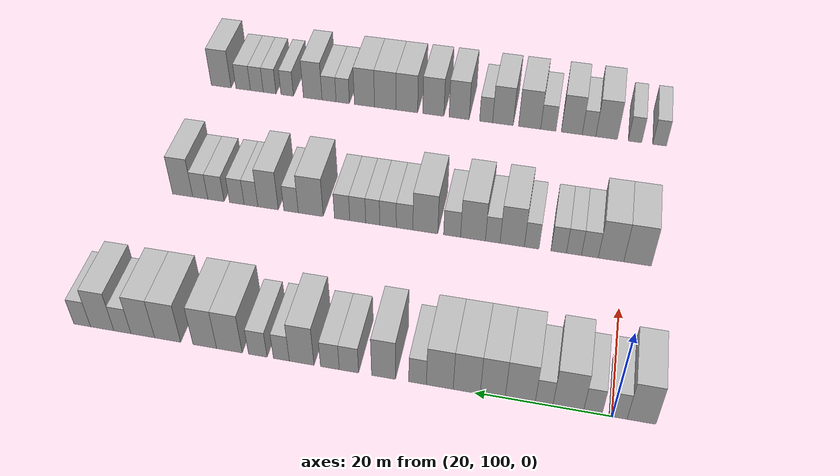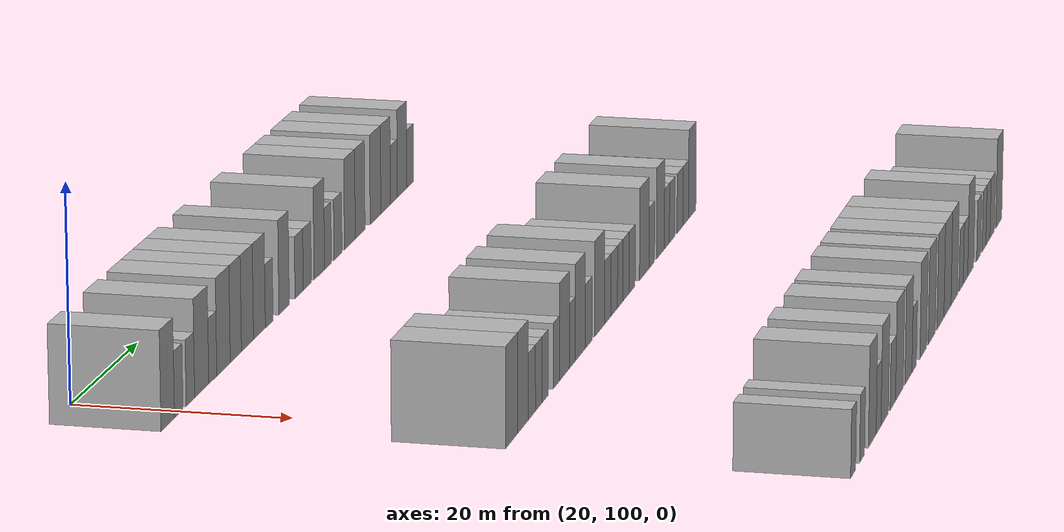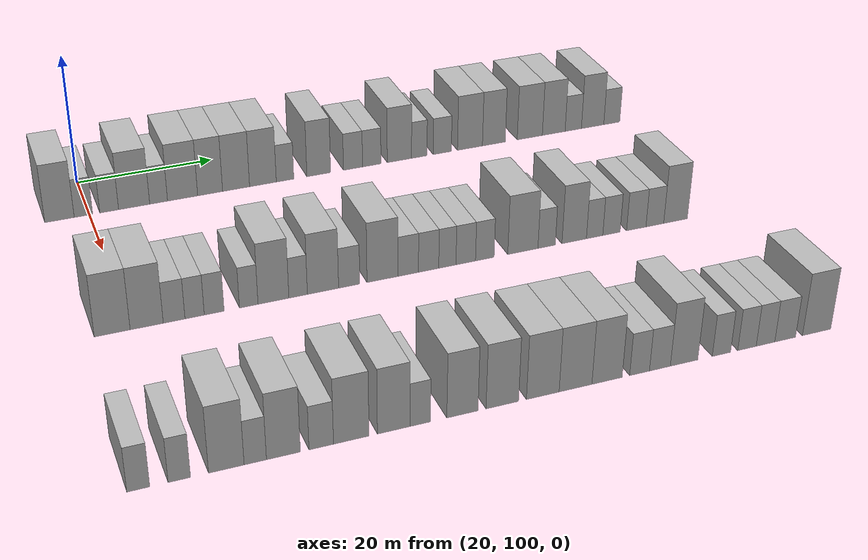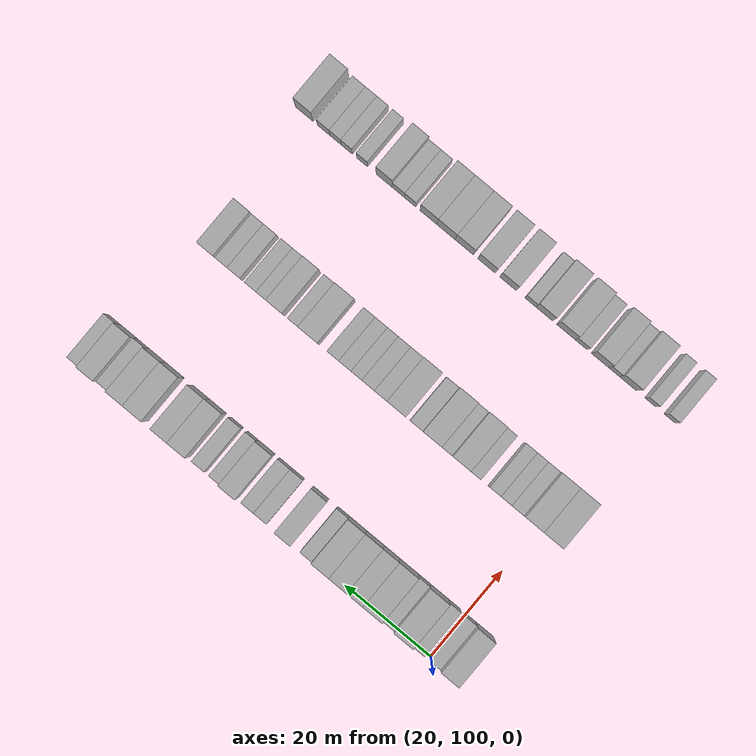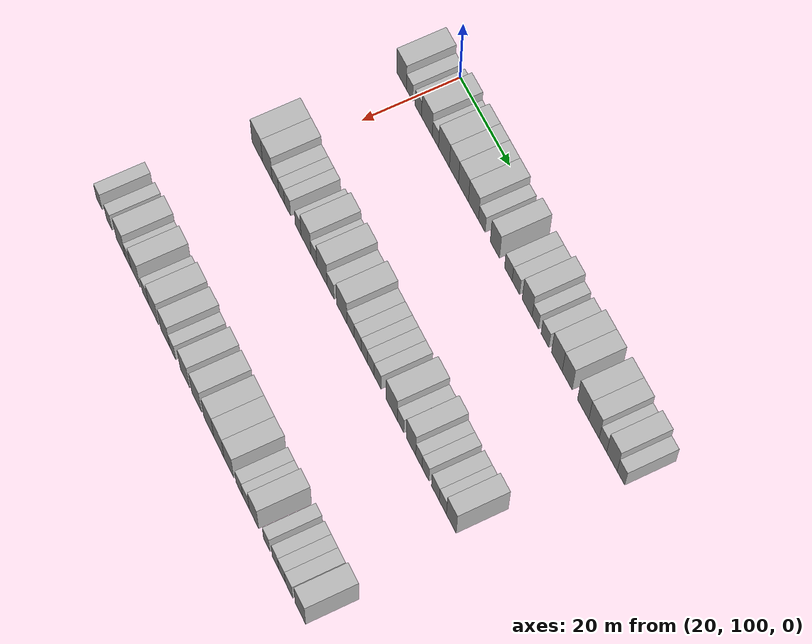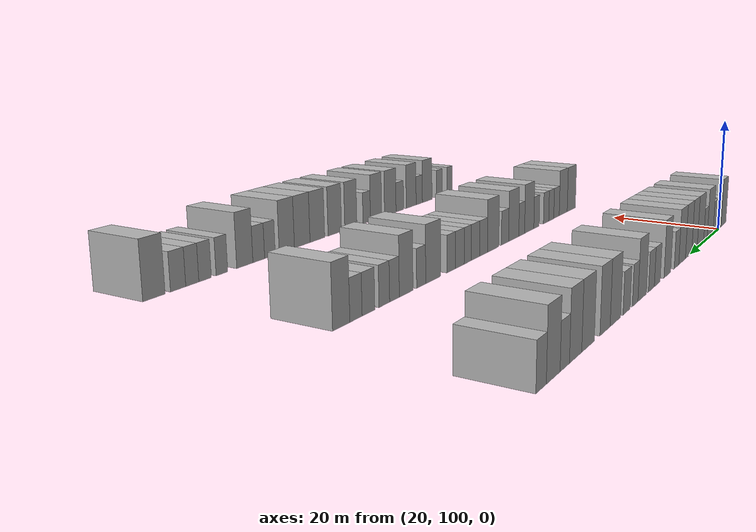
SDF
<sdf version="1.6">
 <world name="default">
  <model name="building_92">
   <static>1</static>
   <pose>25.0000 95.8423 0 0.000000 0.000000 0.000000</pose>
   <link name="link">
    <pose>0 0 4.50 0 0 0</pose>
    <collision name="collision"><geometry><box><size>10.0000 4.0931 9.0000</size></box></geometry></collision>
    <visual name="visual">
     <cast_shadows>0</cast_shadows>
     <geometry><box><size>10.0000 4.0931 9.0000</size></box></geometry>
     <material>
      <script>
       <uri>model://HANNAS_wall/materials/scripts</uri>
       <uri>model://HANNAS_wall/materials/textures</uri>
       <name>vrc/HANNAS_wall</name>
      </script>
     </material>
    </visual>
   </link>
  </model>
  <model name="building_93">
   <static>1</static>
   <pose>25.0000 99.1836 0 0.000000 0.000000 0.000000</pose>
   <link name="link">
    <pose>0 0 3.00 0 0 0</pose>
    <collision name="collision"><geometry><box><size>10.0000 2.5895 6.0000</size></box></geometry></collision>
    <visual name="visual">
     <cast_shadows>0</cast_shadows>
     <geometry><box><size>10.0000 2.5895 6.0000</size></box></geometry>
     <material>
      <script>
       <uri>model://HANNAS_wall/materials/scripts</uri>
       <uri>model://HANNAS_wall/materials/textures</uri>
       <name>vrc/HANNAS_wall</name>
      </script>
     </material>
    </visual>
   </link>
  </model>
  <model name="building_94">
   <static>1</static>
   <pose>25.0000 102.8076 0 0.000000 0.000000 0.000000</pose>
   <link name="link">
    <pose>0 0 3.00 0 0 0</pose>
    <collision name="collision"><geometry><box><size>10.0000 2.6584 6.0000</size></box></geometry></collision>
    <visual name="visual">
     <cast_shadows>0</cast_shadows>
     <geometry><box><size>10.0000 2.6584 6.0000</size></box></geometry>
     <material>
      <script>
       <uri>model://HANNAS_wall/materials/scripts</uri>
       <uri>model://HANNAS_wall/materials/textures</uri>
       <name>vrc/HANNAS_wall</name>
      </script>
     </material>
    </visual>
   </link>
  </model>
  <model name="building_95">
   <static>1</static>
   <pose>25.0000 106.3598 0 0.000000 0.000000 0.000000</pose>
   <link name="link">
    <pose>0 0 4.50 0 0 0</pose>
    <collision name="collision"><geometry><box><size>10.0000 4.4459 9.0000</size></box></geometry></collision>
    <visual name="visual">
     <cast_shadows>0</cast_shadows>
     <geometry><box><size>10.0000 4.4459 9.0000</size></box></geometry>
     <material>
      <script>
       <uri>model://HANNAS_wall/materials/scripts</uri>
       <uri>model://HANNAS_wall/materials/textures</uri>
       <name>vrc/HANNAS_wall</name>
      </script>
     </material>
    </visual>
   </link>
  </model>
  <model name="building_96">
   <static>1</static>
   <pose>25.0000 109.8705 0 0.000000 0.000000 0.000000</pose>
   <link name="link">
    <pose>0 0 3.00 0 0 0</pose>
    <collision name="collision"><geometry><box><size>10.0000 2.5754 6.0000</size></box></geometry></collision>
    <visual name="visual">
     <cast_shadows>0</cast_shadows>
     <geometry><box><size>10.0000 2.5754 6.0000</size></box></geometry>
     <material>
      <script>
       <uri>model://HANNAS_wall/materials/scripts</uri>
       <uri>model://HANNAS_wall/materials/textures</uri>
       <name>vrc/HANNAS_wall</name>
      </script>
     </material>
    </visual>
   </link>
  </model>
  <model name="building_97">
   <static>1</static>
   <pose>25.0000 113.3537 0 0.000000 0.000000 0.000000</pose>
   <link name="link">
    <pose>0 0 4.50 0 0 0</pose>
    <collision name="collision"><geometry><box><size>10.0000 4.3910 9.0000</size></box></geometry></collision>
    <visual name="visual">
     <cast_shadows>0</cast_shadows>
     <geometry><box><size>10.0000 4.3910 9.0000</size></box></geometry>
     <material>
      <script>
       <uri>model://HANNAS_wall/materials/scripts</uri>
       <uri>model://HANNAS_wall/materials/textures</uri>
       <name>vrc/HANNAS_wall</name>
      </script>
     </material>
    </visual>
   </link>
  </model>
  <model name="building_98">
   <static>1</static>
   <pose>25.0000 117.3864 0 0.000000 0.000000 0.000000</pose>
   <link name="link">
    <pose>0 0 4.50 0 0 0</pose>
    <collision name="collision"><geometry><box><size>10.0000 3.6744 9.0000</size></box></geometry></collision>
    <visual name="visual">
     <cast_shadows>0</cast_shadows>
     <geometry><box><size>10.0000 3.6744 9.0000</size></box></geometry>
     <material>
      <script>
       <uri>model://HANNAS_wall/materials/scripts</uri>
       <uri>model://HANNAS_wall/materials/textures</uri>
       <name>vrc/HANNAS_wall</name>
      </script>
     </material>
    </visual>
   </link>
  </model>
  <model name="building_99">
   <static>1</static>
   <pose>25.0000 121.2319 0 0.000000 0.000000 0.000000</pose>
   <link name="link">
    <pose>0 0 4.50 0 0 0</pose>
    <collision name="collision"><geometry><box><size>10.0000 4.0166 9.0000</size></box></geometry></collision>
    <visual name="visual">
     <cast_shadows>0</cast_shadows>
     <geometry><box><size>10.0000 4.0166 9.0000</size></box></geometry>
     <material>
      <script>
       <uri>model://HANNAS_wall/materials/scripts</uri>
       <uri>model://HANNAS_wall/materials/textures</uri>
       <name>vrc/HANNAS_wall</name>
      </script>
     </material>
    </visual>
   </link>
  </model>
  <model name="building_100">
   <static>1</static>
   <pose>25.0000 125.2518 0 0.000000 0.000000 0.000000</pose>
   <link name="link">
    <pose>0 0 4.50 0 0 0</pose>
    <collision name="collision"><geometry><box><size>10.0000 4.0231 9.0000</size></box></geometry></collision>
    <visual name="visual">
     <cast_shadows>0</cast_shadows>
     <geometry><box><size>10.0000 4.0231 9.0000</size></box></geometry>
     <material>
      <script>
       <uri>model://HANNAS_wall/materials/scripts</uri>
       <uri>model://HANNAS_wall/materials/textures</uri>
       <name>vrc/HANNAS_wall</name>
      </script>
     </material>
    </visual>
   </link>
  </model>
  <model name="building_101">
   <static>1</static>
   <pose>25.0000 128.5922 0 0.000000 0.000000 0.000000</pose>
   <link name="link">
    <pose>0 0 3.00 0 0 0</pose>
    <collision name="collision"><geometry><box><size>10.0000 2.6576 6.0000</size></box></geometry></collision>
    <visual name="visual">
     <cast_shadows>0</cast_shadows>
     <geometry><box><size>10.0000 2.6576 6.0000</size></box></geometry>
     <material>
      <script>
       <uri>model://HANNAS_wall/materials/scripts</uri>
       <uri>model://HANNAS_wall/materials/textures</uri>
       <name>vrc/HANNAS_wall</name>
      </script>
     </material>
    </visual>
   </link>
  </model>
  <model name="building_102">
   <static>1</static>
   <pose>25.0000 133.7462 0 0.000000 0.000000 0.000000</pose>
   <link name="link">
    <pose>0 0 4.50 0 0 0</pose>
    <collision name="collision"><geometry><box><size>10.0000 3.6505 9.0000</size></box></geometry></collision>
    <visual name="visual">
     <cast_shadows>0</cast_shadows>
     <geometry><box><size>10.0000 3.6505 9.0000</size></box></geometry>
     <material>
      <script>
       <uri>model://HANNAS_wall/materials/scripts</uri>
       <uri>model://HANNAS_wall/materials/textures</uri>
       <name>vrc/HANNAS_wall</name>
      </script>
     </material>
    </visual>
   </link>
  </model>
  <model name="building_103">
   <static>1</static>
   <pose>25.0000 139.0585 0 0.000000 0.000000 0.000000</pose>
   <link name="link">
    <pose>0 0 3.00 0 0 0</pose>
    <collision name="collision"><geometry><box><size>10.0000 2.9740 6.0000</size></box></geometry></collision>
    <visual name="visual">
     <cast_shadows>0</cast_shadows>
     <geometry><box><size>10.0000 2.9740 6.0000</size></box></geometry>
     <material>
      <script>
       <uri>model://HANNAS_wall/materials/scripts</uri>
       <uri>model://HANNAS_wall/materials/textures</uri>
       <name>vrc/HANNAS_wall</name>
      </script>
     </material>
    </visual>
   </link>
  </model>
  <model name="building_104">
   <static>1</static>
   <pose>25.0000 141.9959 0 0.000000 0.000000 0.000000</pose>
   <link name="link">
    <pose>0 0 3.00 0 0 0</pose>
    <collision name="collision"><geometry><box><size>10.0000 2.9008 6.0000</size></box></geometry></collision>
    <visual name="visual">
     <cast_shadows>0</cast_shadows>
     <geometry><box><size>10.0000 2.9008 6.0000</size></box></geometry>
     <material>
      <script>
       <uri>model://HANNAS_wall/materials/scripts</uri>
       <uri>model://HANNAS_wall/materials/textures</uri>
       <name>vrc/HANNAS_wall</name>
      </script>
     </material>
    </visual>
   </link>
  </model>
  <model name="building_105">
   <static>1</static>
   <pose>25.0000 146.3792 0 0.000000 0.000000 0.000000</pose>
   <link name="link">
    <pose>0 0 4.50 0 0 0</pose>
    <collision name="collision"><geometry><box><size>10.0000 3.8657 9.0000</size></box></geometry></collision>
    <visual name="visual">
     <cast_shadows>0</cast_shadows>
     <geometry><box><size>10.0000 3.8657 9.0000</size></box></geometry>
     <material>
      <script>
       <uri>model://HANNAS_wall/materials/scripts</uri>
       <uri>model://HANNAS_wall/materials/textures</uri>
       <name>vrc/HANNAS_wall</name>
      </script>
     </material>
    </visual>
   </link>
  </model>
  <model name="building_106">
   <static>1</static>
   <pose>25.0000 149.5567 0 0.000000 0.000000 0.000000</pose>
   <link name="link">
    <pose>0 0 3.00 0 0 0</pose>
    <collision name="collision"><geometry><box><size>10.0000 2.4893 6.0000</size></box></geometry></collision>
    <visual name="visual">
     <cast_shadows>0</cast_shadows>
     <geometry><box><size>10.0000 2.4893 6.0000</size></box></geometry>
     <material>
      <script>
       <uri>model://HANNAS_wall/materials/scripts</uri>
       <uri>model://HANNAS_wall/materials/textures</uri>
       <name>vrc/HANNAS_wall</name>
      </script>
     </material>
    </visual>
   </link>
  </model>
  <model name="building_107">
   <static>1</static>
   <pose>25.0000 153.2718 0 0.000000 0.000000 0.000000</pose>
   <link name="link">
    <pose>0 0 3.00 0 0 0</pose>
    <collision name="collision"><geometry><box><size>10.0000 2.9410 6.0000</size></box></geometry></collision>
    <visual name="visual">
     <cast_shadows>0</cast_shadows>
     <geometry><box><size>10.0000 2.9410 6.0000</size></box></geometry>
     <material>
      <script>
       <uri>model://HANNAS_wall/materials/scripts</uri>
       <uri>model://HANNAS_wall/materials/textures</uri>
       <name>vrc/HANNAS_wall</name>
      </script>
     </material>
    </visual>
   </link>
  </model>
  <model name="building_108">
   <static>1</static>
   <pose>25.0000 157.7884 0 0.000000 0.000000 0.000000</pose>
   <link name="link">
    <pose>0 0 4.50 0 0 0</pose>
    <collision name="collision"><geometry><box><size>10.0000 4.0922 9.0000</size></box></geometry></collision>
    <visual name="visual">
     <cast_shadows>0</cast_shadows>
     <geometry><box><size>10.0000 4.0922 9.0000</size></box></geometry>
     <material>
      <script>
       <uri>model://HANNAS_wall/materials/scripts</uri>
       <uri>model://HANNAS_wall/materials/textures</uri>
       <name>vrc/HANNAS_wall</name>
      </script>
     </material>
    </visual>
   </link>
  </model>
  <model name="building_109">
   <static>1</static>
   <pose>25.0000 161.7265 0 0.000000 0.000000 0.000000</pose>
   <link name="link">
    <pose>0 0 4.50 0 0 0</pose>
    <collision name="collision"><geometry><box><size>10.0000 3.7840 9.0000</size></box></geometry></collision>
    <visual name="visual">
     <cast_shadows>0</cast_shadows>
     <geometry><box><size>10.0000 3.7840 9.0000</size></box></geometry>
     <material>
      <script>
       <uri>model://HANNAS_wall/materials/scripts</uri>
       <uri>model://HANNAS_wall/materials/textures</uri>
       <name>vrc/HANNAS_wall</name>
      </script>
     </material>
    </visual>
   </link>
  </model>
  <model name="building_110">
   <static>1</static>
   <pose>25.0000 167.7330 0 0.000000 0.000000 0.000000</pose>
   <link name="link">
    <pose>0 0 4.50 0 0 0</pose>
    <collision name="collision"><geometry><box><size>10.0000 4.2289 9.0000</size></box></geometry></collision>
    <visual name="visual">
     <cast_shadows>0</cast_shadows>
     <geometry><box><size>10.0000 4.2289 9.0000</size></box></geometry>
     <material>
      <script>
       <uri>model://HANNAS_wall/materials/scripts</uri>
       <uri>model://HANNAS_wall/materials/textures</uri>
       <name>vrc/HANNAS_wall</name>
      </script>
     </material>
    </visual>
   </link>
  </model>
  <model name="building_111">
   <static>1</static>
   <pose>25.0000 171.7868 0 0.000000 0.000000 0.000000</pose>
   <link name="link">
    <pose>0 0 4.50 0 0 0</pose>
    <collision name="collision"><geometry><box><size>10.0000 3.8789 9.0000</size></box></geometry></collision>
    <visual name="visual">
     <cast_shadows>0</cast_shadows>
     <geometry><box><size>10.0000 3.8789 9.0000</size></box></geometry>
     <material>
      <script>
       <uri>model://HANNAS_wall/materials/scripts</uri>
       <uri>model://HANNAS_wall/materials/textures</uri>
       <name>vrc/HANNAS_wall</name>
      </script>
     </material>
    </visual>
   </link>
  </model>
  <model name="building_112">
   <static>1</static>
   <pose>25.0000 175.1234 0 0.000000 0.000000 0.000000</pose>
   <link name="link">
    <pose>0 0 3.00 0 0 0</pose>
    <collision name="collision"><geometry><box><size>10.0000 2.7942 6.0000</size></box></geometry></collision>
    <visual name="visual">
     <cast_shadows>0</cast_shadows>
     <geometry><box><size>10.0000 2.7942 6.0000</size></box></geometry>
     <material>
      <script>
       <uri>model://HANNAS_wall/materials/scripts</uri>
       <uri>model://HANNAS_wall/materials/textures</uri>
       <name>vrc/HANNAS_wall</name>
      </script>
     </material>
    </visual>
   </link>
  </model>
  <model name="building_113">
   <static>1</static>
   <pose>25.0000 178.4568 0 0.000000 0.000000 0.000000</pose>
   <link name="link">
    <pose>0 0 4.50 0 0 0</pose>
    <collision name="collision"><geometry><box><size>10.0000 3.8726 9.0000</size></box></geometry></collision>
    <visual name="visual">
     <cast_shadows>0</cast_shadows>
     <geometry><box><size>10.0000 3.8726 9.0000</size></box></geometry>
     <material>
      <script>
       <uri>model://HANNAS_wall/materials/scripts</uri>
       <uri>model://HANNAS_wall/materials/textures</uri>
       <name>vrc/HANNAS_wall</name>
      </script>
     </material>
    </visual>
   </link>
  </model>
  <model name="building_114">
   <static>1</static>
   <pose>25.0000 181.7851 0 0.000000 0.000000 0.000000</pose>
   <link name="link">
    <pose>0 0 3.00 0 0 0</pose>
    <collision name="collision"><geometry><box><size>10.0000 2.7840 6.0000</size></box></geometry></collision>
    <visual name="visual">
     <cast_shadows>0</cast_shadows>
     <geometry><box><size>10.0000 2.7840 6.0000</size></box></geometry>
     <material>
      <script>
       <uri>model://HANNAS_wall/materials/scripts</uri>
       <uri>model://HANNAS_wall/materials/textures</uri>
       <name>vrc/HANNAS_wall</name>
      </script>
     </material>
    </visual>
   </link>
  </model>
  <model name="building_233">
   <static>1</static>
   <pose>55.0000 97.4801 0 0.000000 0.000000 0.000000</pose>
   <link name="link">
    <pose>0 0 4.50 0 0 0</pose>
    <collision name="collision"><geometry><box><size>10.0000 4.4728 9.0000</size></box></geometry></collision>
    <visual name="visual">
     <cast_shadows>0</cast_shadows>
     <geometry><box><size>10.0000 4.4728 9.0000</size></box></geometry>
     <material>
      <script>
       <uri>model://HANNAS_wall/materials/scripts</uri>
       <uri>model://HANNAS_wall/materials/textures</uri>
       <name>vrc/HANNAS_wall</name>
      </script>
     </material>
    </visual>
   </link>
  </model>
  <model name="building_234">
   <static>1</static>
   <pose>55.0000 101.8052 0 0.000000 0.000000 0.000000</pose>
   <link name="link">
    <pose>0 0 4.50 0 0 0</pose>
    <collision name="collision"><geometry><box><size>10.0000 4.1774 9.0000</size></box></geometry></collision>
    <visual name="visual">
     <cast_shadows>0</cast_shadows>
     <geometry><box><size>10.0000 4.1774 9.0000</size></box></geometry>
     <material>
      <script>
       <uri>model://HANNAS_wall/materials/scripts</uri>
       <uri>model://HANNAS_wall/materials/textures</uri>
       <name>vrc/HANNAS_wall</name>
      </script>
     </material>
    </visual>
   </link>
  </model>
  <model name="building_235">
   <static>1</static>
   <pose>55.0000 105.2798 0 0.000000 0.000000 0.000000</pose>
   <link name="link">
    <pose>0 0 3.00 0 0 0</pose>
    <collision name="collision"><geometry><box><size>10.0000 2.7718 6.0000</size></box></geometry></collision>
    <visual name="visual">
     <cast_shadows>0</cast_shadows>
     <geometry><box><size>10.0000 2.7718 6.0000</size></box></geometry>
     <material>
      <script>
       <uri>model://HANNAS_wall/materials/scripts</uri>
       <uri>model://HANNAS_wall/materials/textures</uri>
       <name>vrc/HANNAS_wall</name>
      </script>
     </material>
    </visual>
   </link>
  </model>
  <model name="building_236">
   <static>1</static>
   <pose>55.0000 107.9070 0 0.000000 0.000000 0.000000</pose>
   <link name="link">
    <pose>0 0 3.00 0 0 0</pose>
    <collision name="collision"><geometry><box><size>10.0000 2.4826 6.0000</size></box></geometry></collision>
    <visual name="visual">
     <cast_shadows>0</cast_shadows>
     <geometry><box><size>10.0000 2.4826 6.0000</size></box></geometry>
     <material>
      <script>
       <uri>model://HANNAS_wall/materials/scripts</uri>
       <uri>model://HANNAS_wall/materials/textures</uri>
       <name>vrc/HANNAS_wall</name>
      </script>
     </material>
    </visual>
   </link>
  </model>
  <model name="building_237">
   <static>1</static>
   <pose>55.0000 110.4336 0 0.000000 0.000000 0.000000</pose>
   <link name="link">
    <pose>0 0 3.00 0 0 0</pose>
    <collision name="collision"><geometry><box><size>10.0000 2.5706 6.0000</size></box></geometry></collision>
    <visual name="visual">
     <cast_shadows>0</cast_shadows>
     <geometry><box><size>10.0000 2.5706 6.0000</size></box></geometry>
     <material>
      <script>
       <uri>model://HANNAS_wall/materials/scripts</uri>
       <uri>model://HANNAS_wall/materials/textures</uri>
       <name>vrc/HANNAS_wall</name>
      </script>
     </material>
    </visual>
   </link>
  </model>
  <model name="building_238">
   <static>1</static>
   <pose>55.0000 114.9391 0 0.000000 0.000000 0.000000</pose>
   <link name="link">
    <pose>0 0 3.00 0 0 0</pose>
    <collision name="collision"><geometry><box><size>10.0000 2.4404 6.0000</size></box></geometry></collision>
    <visual name="visual">
     <cast_shadows>0</cast_shadows>
     <geometry><box><size>10.0000 2.4404 6.0000</size></box></geometry>
     <material>
      <script>
       <uri>model://HANNAS_wall/materials/scripts</uri>
       <uri>model://HANNAS_wall/materials/textures</uri>
       <name>vrc/HANNAS_wall</name>
      </script>
     </material>
    </visual>
   </link>
  </model>
  <model name="building_239">
   <static>1</static>
   <pose>55.0000 118.2102 0 0.000000 0.000000 0.000000</pose>
   <link name="link">
    <pose>0 0 4.50 0 0 0</pose>
    <collision name="collision"><geometry><box><size>10.0000 4.1018 9.0000</size></box></geometry></collision>
    <visual name="visual">
     <cast_shadows>0</cast_shadows>
     <geometry><box><size>10.0000 4.1018 9.0000</size></box></geometry>
     <material>
      <script>
       <uri>model://HANNAS_wall/materials/scripts</uri>
       <uri>model://HANNAS_wall/materials/textures</uri>
       <name>vrc/HANNAS_wall</name>
      </script>
     </material>
    </visual>
   </link>
  </model>
  <model name="building_240">
   <static>1</static>
   <pose>55.0000 121.4996 0 0.000000 0.000000 0.000000</pose>
   <link name="link">
    <pose>0 0 3.00 0 0 0</pose>
    <collision name="collision"><geometry><box><size>10.0000 2.4769 6.0000</size></box></geometry></collision>
    <visual name="visual">
     <cast_shadows>0</cast_shadows>
     <geometry><box><size>10.0000 2.4769 6.0000</size></box></geometry>
     <material>
      <script>
       <uri>model://HANNAS_wall/materials/scripts</uri>
       <uri>model://HANNAS_wall/materials/textures</uri>
       <name>vrc/HANNAS_wall</name>
      </script>
     </material>
    </visual>
   </link>
  </model>
  <model name="building_241">
   <static>1</static>
   <pose>55.0000 124.8544 0 0.000000 0.000000 0.000000</pose>
   <link name="link">
    <pose>0 0 4.50 0 0 0</pose>
    <collision name="collision"><geometry><box><size>10.0000 4.2327 9.0000</size></box></geometry></collision>
    <visual name="visual">
     <cast_shadows>0</cast_shadows>
     <geometry><box><size>10.0000 4.2327 9.0000</size></box></geometry>
     <material>
      <script>
       <uri>model://HANNAS_wall/materials/scripts</uri>
       <uri>model://HANNAS_wall/materials/textures</uri>
       <name>vrc/HANNAS_wall</name>
      </script>
     </material>
    </visual>
   </link>
  </model>
  <model name="building_242">
   <static>1</static>
   <pose>55.0000 128.4194 0 0.000000 0.000000 0.000000</pose>
   <link name="link">
    <pose>0 0 3.00 0 0 0</pose>
    <collision name="collision"><geometry><box><size>10.0000 2.8975 6.0000</size></box></geometry></collision>
    <visual name="visual">
     <cast_shadows>0</cast_shadows>
     <geometry><box><size>10.0000 2.8975 6.0000</size></box></geometry>
     <material>
      <script>
       <uri>model://HANNAS_wall/materials/scripts</uri>
       <uri>model://HANNAS_wall/materials/textures</uri>
       <name>vrc/HANNAS_wall</name>
      </script>
     </material>
    </visual>
   </link>
  </model>
  <model name="building_243">
   <static>1</static>
   <pose>55.0000 133.0146 0 0.000000 0.000000 0.000000</pose>
   <link name="link">
    <pose>0 0 4.50 0 0 0</pose>
    <collision name="collision"><geometry><box><size>10.0000 4.2928 9.0000</size></box></geometry></collision>
    <visual name="visual">
     <cast_shadows>0</cast_shadows>
     <geometry><box><size>10.0000 4.2928 9.0000</size></box></geometry>
     <material>
      <script>
       <uri>model://HANNAS_wall/materials/scripts</uri>
       <uri>model://HANNAS_wall/materials/textures</uri>
       <name>vrc/HANNAS_wall</name>
      </script>
     </material>
    </visual>
   </link>
  </model>
  <model name="building_244">
   <static>1</static>
   <pose>55.0000 136.6033 0 0.000000 0.000000 0.000000</pose>
   <link name="link">
    <pose>0 0 3.00 0 0 0</pose>
    <collision name="collision"><geometry><box><size>10.0000 2.8846 6.0000</size></box></geometry></collision>
    <visual name="visual">
     <cast_shadows>0</cast_shadows>
     <geometry><box><size>10.0000 2.8846 6.0000</size></box></geometry>
     <material>
      <script>
       <uri>model://HANNAS_wall/materials/scripts</uri>
       <uri>model://HANNAS_wall/materials/textures</uri>
       <name>vrc/HANNAS_wall</name>
      </script>
     </material>
    </visual>
   </link>
  </model>
  <model name="building_245">
   <static>1</static>
   <pose>55.0000 139.4843 0 0.000000 0.000000 0.000000</pose>
   <link name="link">
    <pose>0 0 3.00 0 0 0</pose>
    <collision name="collision"><geometry><box><size>10.0000 2.8774 6.0000</size></box></geometry></collision>
    <visual name="visual">
     <cast_shadows>0</cast_shadows>
     <geometry><box><size>10.0000 2.8774 6.0000</size></box></geometry>
     <material>
      <script>
       <uri>model://HANNAS_wall/materials/scripts</uri>
       <uri>model://HANNAS_wall/materials/textures</uri>
       <name>vrc/HANNAS_wall</name>
      </script>
     </material>
    </visual>
   </link>
  </model>
  <model name="building_246">
   <static>1</static>
   <pose>55.0000 142.1514 0 0.000000 0.000000 0.000000</pose>
   <link name="link">
    <pose>0 0 3.00 0 0 0</pose>
    <collision name="collision"><geometry><box><size>10.0000 2.4569 6.0000</size></box></geometry></collision>
    <visual name="visual">
     <cast_shadows>0</cast_shadows>
     <geometry><box><size>10.0000 2.4569 6.0000</size></box></geometry>
     <material>
      <script>
       <uri>model://HANNAS_wall/materials/scripts</uri>
       <uri>model://HANNAS_wall/materials/textures</uri>
       <name>vrc/HANNAS_wall</name>
      </script>
     </material>
    </visual>
   </link>
  </model>
  <model name="building_247">
   <static>1</static>
   <pose>55.0000 144.7847 0 0.000000 0.000000 0.000000</pose>
   <link name="link">
    <pose>0 0 3.00 0 0 0</pose>
    <collision name="collision"><geometry><box><size>10.0000 2.8097 6.0000</size></box></geometry></collision>
    <visual name="visual">
     <cast_shadows>0</cast_shadows>
     <geometry><box><size>10.0000 2.8097 6.0000</size></box></geometry>
     <material>
      <script>
       <uri>model://HANNAS_wall/materials/scripts</uri>
       <uri>model://HANNAS_wall/materials/textures</uri>
       <name>vrc/HANNAS_wall</name>
      </script>
     </material>
    </visual>
   </link>
  </model>
  <model name="building_248">
   <static>1</static>
   <pose>55.0000 147.5394 0 0.000000 0.000000 0.000000</pose>
   <link name="link">
    <pose>0 0 3.00 0 0 0</pose>
    <collision name="collision"><geometry><box><size>10.0000 2.6997 6.0000</size></box></geometry></collision>
    <visual name="visual">
     <cast_shadows>0</cast_shadows>
     <geometry><box><size>10.0000 2.6997 6.0000</size></box></geometry>
     <material>
      <script>
       <uri>model://HANNAS_wall/materials/scripts</uri>
       <uri>model://HANNAS_wall/materials/textures</uri>
       <name>vrc/HANNAS_wall</name>
      </script>
     </material>
    </visual>
   </link>
  </model>
  <model name="building_249">
   <static>1</static>
   <pose>55.0000 153.1123 0 0.000000 0.000000 0.000000</pose>
   <link name="link">
    <pose>0 0 4.50 0 0 0</pose>
    <collision name="collision"><geometry><box><size>10.0000 4.4461 9.0000</size></box></geometry></collision>
    <visual name="visual">
     <cast_shadows>0</cast_shadows>
     <geometry><box><size>10.0000 4.4461 9.0000</size></box></geometry>
     <material>
      <script>
       <uri>model://HANNAS_wall/materials/scripts</uri>
       <uri>model://HANNAS_wall/materials/textures</uri>
       <name>vrc/HANNAS_wall</name>
      </script>
     </material>
    </visual>
   </link>
  </model>
  <model name="building_250">
   <static>1</static>
   <pose>55.0000 156.6277 0 0.000000 0.000000 0.000000</pose>
   <link name="link">
    <pose>0 0 3.00 0 0 0</pose>
    <collision name="collision"><geometry><box><size>10.0000 2.5848 6.0000</size></box></geometry></collision>
    <visual name="visual">
     <cast_shadows>0</cast_shadows>
     <geometry><box><size>10.0000 2.5848 6.0000</size></box></geometry>
     <material>
      <script>
       <uri>model://HANNAS_wall/materials/scripts</uri>
       <uri>model://HANNAS_wall/materials/textures</uri>
       <name>vrc/HANNAS_wall</name>
      </script>
     </material>
    </visual>
   </link>
  </model>
  <model name="building_251">
   <static>1</static>
   <pose>55.0000 160.7636 0 0.000000 0.000000 0.000000</pose>
   <link name="link">
    <pose>0 0 4.50 0 0 0</pose>
    <collision name="collision"><geometry><box><size>10.0000 3.6870 9.0000</size></box></geometry></collision>
    <visual name="visual">
     <cast_shadows>0</cast_shadows>
     <geometry><box><size>10.0000 3.6870 9.0000</size></box></geometry>
     <material>
      <script>
       <uri>model://HANNAS_wall/materials/scripts</uri>
       <uri>model://HANNAS_wall/materials/textures</uri>
       <name>vrc/HANNAS_wall</name>
      </script>
     </material>
    </visual>
   </link>
  </model>
  <model name="building_252">
   <static>1</static>
   <pose>55.0000 163.8532 0 0.000000 0.000000 0.000000</pose>
   <link name="link">
    <pose>0 0 3.00 0 0 0</pose>
    <collision name="collision"><geometry><box><size>10.0000 2.4921 6.0000</size></box></geometry></collision>
    <visual name="visual">
     <cast_shadows>0</cast_shadows>
     <geometry><box><size>10.0000 2.4921 6.0000</size></box></geometry>
     <material>
      <script>
       <uri>model://HANNAS_wall/materials/scripts</uri>
       <uri>model://HANNAS_wall/materials/textures</uri>
       <name>vrc/HANNAS_wall</name>
      </script>
     </material>
    </visual>
   </link>
  </model>
  <model name="building_253">
   <static>1</static>
   <pose>55.0000 166.4265 0 0.000000 0.000000 0.000000</pose>
   <link name="link">
    <pose>0 0 3.00 0 0 0</pose>
    <collision name="collision"><geometry><box><size>10.0000 2.6545 6.0000</size></box></geometry></collision>
    <visual name="visual">
     <cast_shadows>0</cast_shadows>
     <geometry><box><size>10.0000 2.6545 6.0000</size></box></geometry>
     <material>
      <script>
       <uri>model://HANNAS_wall/materials/scripts</uri>
       <uri>model://HANNAS_wall/materials/textures</uri>
       <name>vrc/HANNAS_wall</name>
      </script>
     </material>
    </visual>
   </link>
  </model>
  <model name="building_254">
   <static>1</static>
   <pose>55.0000 170.2523 0 0.000000 0.000000 0.000000</pose>
   <link name="link">
    <pose>0 0 3.00 0 0 0</pose>
    <collision name="collision"><geometry><box><size>10.0000 2.9971 6.0000</size></box></geometry></collision>
    <visual name="visual">
     <cast_shadows>0</cast_shadows>
     <geometry><box><size>10.0000 2.9971 6.0000</size></box></geometry>
     <material>
      <script>
       <uri>model://HANNAS_wall/materials/scripts</uri>
       <uri>model://HANNAS_wall/materials/textures</uri>
       <name>vrc/HANNAS_wall</name>
      </script>
     </material>
    </visual>
   </link>
  </model>
  <model name="building_255">
   <static>1</static>
   <pose>55.0000 173.1362 0 0.000000 0.000000 0.000000</pose>
   <link name="link">
    <pose>0 0 3.00 0 0 0</pose>
    <collision name="collision"><geometry><box><size>10.0000 2.7706 6.0000</size></box></geometry></collision>
    <visual name="visual">
     <cast_shadows>0</cast_shadows>
     <geometry><box><size>10.0000 2.7706 6.0000</size></box></geometry>
     <material>
      <script>
       <uri>model://HANNAS_wall/materials/scripts</uri>
       <uri>model://HANNAS_wall/materials/textures</uri>
       <name>vrc/HANNAS_wall</name>
      </script>
     </material>
    </visual>
   </link>
  </model>
  <model name="building_256">
   <static>1</static>
   <pose>55.0000 176.3845 0 0.000000 0.000000 0.000000</pose>
   <link name="link">
    <pose>0 0 4.50 0 0 0</pose>
    <collision name="collision"><geometry><box><size>10.0000 3.7260 9.0000</size></box></geometry></collision>
    <visual name="visual">
     <cast_shadows>0</cast_shadows>
     <geometry><box><size>10.0000 3.7260 9.0000</size></box></geometry>
     <material>
      <script>
       <uri>model://HANNAS_wall/materials/scripts</uri>
       <uri>model://HANNAS_wall/materials/textures</uri>
       <name>vrc/HANNAS_wall</name>
      </script>
     </material>
    </visual>
   </link>
  </model>
  <model name="building_369">
   <static>1</static>
   <pose>85.0000 94.5284 0 0.000000 0.000000 0.000000</pose>
   <link name="link">
    <pose>0 0 3.00 0 0 0</pose>
    <collision name="collision"><geometry><box><size>10.0000 2.4958 6.0000</size></box></geometry></collision>
    <visual name="visual">
     <cast_shadows>0</cast_shadows>
     <geometry><box><size>10.0000 2.4958 6.0000</size></box></geometry>
     <material>
      <script>
       <uri>model://HANNAS_wall/materials/scripts</uri>
       <uri>model://HANNAS_wall/materials/textures</uri>
       <name>vrc/HANNAS_wall</name>
      </script>
     </material>
    </visual>
   </link>
  </model>
  <model name="building_370">
   <static>1</static>
   <pose>85.0000 99.0122 0 0.000000 0.000000 0.000000</pose>
   <link name="link">
    <pose>0 0 3.00 0 0 0</pose>
    <collision name="collision"><geometry><box><size>10.0000 2.4717 6.0000</size></box></geometry></collision>
    <visual name="visual">
     <cast_shadows>0</cast_shadows>
     <geometry><box><size>10.0000 2.4717 6.0000</size></box></geometry>
     <material>
      <script>
       <uri>model://HANNAS_wall/materials/scripts</uri>
       <uri>model://HANNAS_wall/materials/textures</uri>
       <name>vrc/HANNAS_wall</name>
      </script>
     </material>
    </visual>
   </link>
  </model>
  <model name="building_371">
   <static>1</static>
   <pose>85.0000 104.2459 0 0.000000 0.000000 0.000000</pose>
   <link name="link">
    <pose>0 0 4.50 0 0 0</pose>
    <collision name="collision"><geometry><box><size>10.0000 3.9957 9.0000</size></box></geometry></collision>
    <visual name="visual">
     <cast_shadows>0</cast_shadows>
     <geometry><box><size>10.0000 3.9957 9.0000</size></box></geometry>
     <material>
      <script>
       <uri>model://HANNAS_wall/materials/scripts</uri>
       <uri>model://HANNAS_wall/materials/textures</uri>
       <name>vrc/HANNAS_wall</name>
      </script>
     </material>
    </visual>
   </link>
  </model>
  <model name="building_372">
   <static>1</static>
   <pose>85.0000 107.5106 0 0.000000 0.000000 0.000000</pose>
   <link name="link">
    <pose>0 0 3.00 0 0 0</pose>
    <collision name="collision"><geometry><box><size>10.0000 2.5338 6.0000</size></box></geometry></collision>
    <visual name="visual">
     <cast_shadows>0</cast_shadows>
     <geometry><box><size>10.0000 2.5338 6.0000</size></box></geometry>
     <material>
      <script>
       <uri>model://HANNAS_wall/materials/scripts</uri>
       <uri>model://HANNAS_wall/materials/textures</uri>
       <name>vrc/HANNAS_wall</name>
      </script>
     </material>
    </visual>
   </link>
  </model>
  <model name="building_373">
   <static>1</static>
   <pose>85.0000 110.7258 0 0.000000 0.000000 0.000000</pose>
   <link name="link">
    <pose>0 0 4.50 0 0 0</pose>
    <collision name="collision"><geometry><box><size>10.0000 3.8965 9.0000</size></box></geometry></collision>
    <visual name="visual">
     <cast_shadows>0</cast_shadows>
     <geometry><box><size>10.0000 3.8965 9.0000</size></box></geometry>
     <material>
      <script>
       <uri>model://HANNAS_wall/materials/scripts</uri>
       <uri>model://HANNAS_wall/materials/textures</uri>
       <name>vrc/HANNAS_wall</name>
      </script>
     </material>
    </visual>
   </link>
  </model>
  <model name="building_374">
   <static>1</static>
   <pose>85.0000 115.1040 0 0.000000 0.000000 0.000000</pose>
   <link name="link">
    <pose>0 0 3.00 0 0 0</pose>
    <collision name="collision"><geometry><box><size>10.0000 2.8601 6.0000</size></box></geometry></collision>
    <visual name="visual">
     <cast_shadows>0</cast_shadows>
     <geometry><box><size>10.0000 2.8601 6.0000</size></box></geometry>
     <material>
      <script>
       <uri>model://HANNAS_wall/materials/scripts</uri>
       <uri>model://HANNAS_wall/materials/textures</uri>
       <name>vrc/HANNAS_wall</name>
      </script>
     </material>
    </visual>
   </link>
  </model>
  <model name="building_375">
   <static>1</static>
   <pose>85.0000 118.6297 0 0.000000 0.000000 0.000000</pose>
   <link name="link">
    <pose>0 0 4.50 0 0 0</pose>
    <collision name="collision"><geometry><box><size>10.0000 4.1912 9.0000</size></box></geometry></collision>
    <visual name="visual">
     <cast_shadows>0</cast_shadows>
     <geometry><box><size>10.0000 4.1912 9.0000</size></box></geometry>
     <material>
      <script>
       <uri>model://HANNAS_wall/materials/scripts</uri>
       <uri>model://HANNAS_wall/materials/textures</uri>
       <name>vrc/HANNAS_wall</name>
      </script>
     </material>
    </visual>
   </link>
  </model>
  <model name="building_376">
   <static>1</static>
   <pose>85.0000 123.6843 0 0.000000 0.000000 0.000000</pose>
   <link name="link">
    <pose>0 0 4.50 0 0 0</pose>
    <collision name="collision"><geometry><box><size>10.0000 3.9180 9.0000</size></box></geometry></collision>
    <visual name="visual">
     <cast_shadows>0</cast_shadows>
     <geometry><box><size>10.0000 3.9180 9.0000</size></box></geometry>
     <material>
      <script>
       <uri>model://HANNAS_wall/materials/scripts</uri>
       <uri>model://HANNAS_wall/materials/textures</uri>
       <name>vrc/HANNAS_wall</name>
      </script>
     </material>
    </visual>
   </link>
  </model>
  <model name="building_377">
   <static>1</static>
   <pose>85.0000 126.8895 0 0.000000 0.000000 0.000000</pose>
   <link name="link">
    <pose>0 0 3.00 0 0 0</pose>
    <collision name="collision"><geometry><box><size>10.0000 2.4923 6.0000</size></box></geometry></collision>
    <visual name="visual">
     <cast_shadows>0</cast_shadows>
     <geometry><box><size>10.0000 2.4923 6.0000</size></box></geometry>
     <material>
      <script>
       <uri>model://HANNAS_wall/materials/scripts</uri>
       <uri>model://HANNAS_wall/materials/textures</uri>
       <name>vrc/HANNAS_wall</name>
      </script>
     </material>
    </visual>
   </link>
  </model>
  <model name="building_378">
   <static>1</static>
   <pose>85.0000 132.0668 0 0.000000 0.000000 0.000000</pose>
   <link name="link">
    <pose>0 0 4.50 0 0 0</pose>
    <collision name="collision"><geometry><box><size>10.0000 3.8624 9.0000</size></box></geometry></collision>
    <visual name="visual">
     <cast_shadows>0</cast_shadows>
     <geometry><box><size>10.0000 3.8624 9.0000</size></box></geometry>
     <material>
      <script>
       <uri>model://HANNAS_wall/materials/scripts</uri>
       <uri>model://HANNAS_wall/materials/textures</uri>
       <name>vrc/HANNAS_wall</name>
      </script>
     </material>
    </visual>
   </link>
  </model>
  <model name="building_379">
   <static>1</static>
   <pose>85.0000 137.0461 0 0.000000 0.000000 0.000000</pose>
   <link name="link">
    <pose>0 0 4.50 0 0 0</pose>
    <collision name="collision"><geometry><box><size>10.0000 4.0960 9.0000</size></box></geometry></collision>
    <visual name="visual">
     <cast_shadows>0</cast_shadows>
     <geometry><box><size>10.0000 4.0960 9.0000</size></box></geometry>
     <material>
      <script>
       <uri>model://HANNAS_wall/materials/scripts</uri>
       <uri>model://HANNAS_wall/materials/textures</uri>
       <name>vrc/HANNAS_wall</name>
      </script>
     </material>
    </visual>
   </link>
  </model>
  <model name="building_380">
   <static>1</static>
   <pose>85.0000 142.1881 0 0.000000 0.000000 0.000000</pose>
   <link name="link">
    <pose>0 0 4.50 0 0 0</pose>
    <collision name="collision"><geometry><box><size>10.0000 4.1880 9.0000</size></box></geometry></collision>
    <visual name="visual">
     <cast_shadows>0</cast_shadows>
     <geometry><box><size>10.0000 4.1880 9.0000</size></box></geometry>
     <material>
      <script>
       <uri>model://HANNAS_wall/materials/scripts</uri>
       <uri>model://HANNAS_wall/materials/textures</uri>
       <name>vrc/HANNAS_wall</name>
      </script>
     </material>
    </visual>
   </link>
  </model>
  <model name="building_381">
   <static>1</static>
   <pose>85.0000 146.4145 0 0.000000 0.000000 0.000000</pose>
   <link name="link">
    <pose>0 0 4.50 0 0 0</pose>
    <collision name="collision"><geometry><box><size>10.0000 4.2648 9.0000</size></box></geometry></collision>
    <visual name="visual">
     <cast_shadows>0</cast_shadows>
     <geometry><box><size>10.0000 4.2648 9.0000</size></box></geometry>
     <material>
      <script>
       <uri>model://HANNAS_wall/materials/scripts</uri>
       <uri>model://HANNAS_wall/materials/textures</uri>
       <name>vrc/HANNAS_wall</name>
      </script>
     </material>
    </visual>
   </link>
  </model>
  <model name="building_382">
   <static>1</static>
   <pose>85.0000 150.5377 0 0.000000 0.000000 0.000000</pose>
   <link name="link">
    <pose>0 0 4.50 0 0 0</pose>
    <collision name="collision"><geometry><box><size>10.0000 3.9818 9.0000</size></box></geometry></collision>
    <visual name="visual">
     <cast_shadows>0</cast_shadows>
     <geometry><box><size>10.0000 3.9818 9.0000</size></box></geometry>
     <material>
      <script>
       <uri>model://HANNAS_wall/materials/scripts</uri>
       <uri>model://HANNAS_wall/materials/textures</uri>
       <name>vrc/HANNAS_wall</name>
      </script>
     </material>
    </visual>
   </link>
  </model>
  <model name="building_383">
   <static>1</static>
   <pose>85.0000 154.8501 0 0.000000 0.000000 0.000000</pose>
   <link name="link">
    <pose>0 0 3.00 0 0 0</pose>
    <collision name="collision"><geometry><box><size>10.0000 2.6429 6.0000</size></box></geometry></collision>
    <visual name="visual">
     <cast_shadows>0</cast_shadows>
     <geometry><box><size>10.0000 2.6429 6.0000</size></box></geometry>
     <material>
      <script>
       <uri>model://HANNAS_wall/materials/scripts</uri>
       <uri>model://HANNAS_wall/materials/textures</uri>
       <name>vrc/HANNAS_wall</name>
      </script>
     </material>
    </visual>
   </link>
  </model>
  <model name="building_384">
   <static>1</static>
   <pose>85.0000 157.5805 0 0.000000 0.000000 0.000000</pose>
   <link name="link">
    <pose>0 0 3.00 0 0 0</pose>
    <collision name="collision"><geometry><box><size>10.0000 2.8179 6.0000</size></box></geometry></collision>
    <visual name="visual">
     <cast_shadows>0</cast_shadows>
     <geometry><box><size>10.0000 2.8179 6.0000</size></box></geometry>
     <material>
      <script>
       <uri>model://HANNAS_wall/materials/scripts</uri>
       <uri>model://HANNAS_wall/materials/textures</uri>
       <name>vrc/HANNAS_wall</name>
      </script>
     </material>
    </visual>
   </link>
  </model>
  <model name="building_385">
   <static>1</static>
   <pose>85.0000 160.8605 0 0.000000 0.000000 0.000000</pose>
   <link name="link">
    <pose>0 0 4.50 0 0 0</pose>
    <collision name="collision"><geometry><box><size>10.0000 3.7423 9.0000</size></box></geometry></collision>
    <visual name="visual">
     <cast_shadows>0</cast_shadows>
     <geometry><box><size>10.0000 3.7423 9.0000</size></box></geometry>
     <material>
      <script>
       <uri>model://HANNAS_wall/materials/scripts</uri>
       <uri>model://HANNAS_wall/materials/textures</uri>
       <name>vrc/HANNAS_wall</name>
      </script>
     </material>
    </visual>
   </link>
  </model>
  <model name="building_386">
   <static>1</static>
   <pose>85.0000 165.9999 0 0.000000 0.000000 0.000000</pose>
   <link name="link">
    <pose>0 0 3.00 0 0 0</pose>
    <collision name="collision"><geometry><box><size>10.0000 2.5365 6.0000</size></box></geometry></collision>
    <visual name="visual">
     <cast_shadows>0</cast_shadows>
     <geometry><box><size>10.0000 2.5365 6.0000</size></box></geometry>
     <material>
      <script>
       <uri>model://HANNAS_wall/materials/scripts</uri>
       <uri>model://HANNAS_wall/materials/textures</uri>
       <name>vrc/HANNAS_wall</name>
      </script>
     </material>
    </visual>
   </link>
  </model>
  <model name="building_387">
   <static>1</static>
   <pose>85.0000 169.5630 0 0.000000 0.000000 0.000000</pose>
   <link name="link">
    <pose>0 0 3.00 0 0 0</pose>
    <collision name="collision"><geometry><box><size>10.0000 2.5895 6.0000</size></box></geometry></collision>
    <visual name="visual">
     <cast_shadows>0</cast_shadows>
     <geometry><box><size>10.0000 2.5895 6.0000</size></box></geometry>
     <material>
      <script>
       <uri>model://HANNAS_wall/materials/scripts</uri>
       <uri>model://HANNAS_wall/materials/textures</uri>
       <name>vrc/HANNAS_wall</name>
      </script>
     </material>
    </visual>
   </link>
  </model>
  <model name="building_388">
   <static>1</static>
   <pose>85.0000 172.1726 0 0.000000 0.000000 0.000000</pose>
   <link name="link">
    <pose>0 0 3.00 0 0 0</pose>
    <collision name="collision"><geometry><box><size>10.0000 2.6297 6.0000</size></box></geometry></collision>
    <visual name="visual">
     <cast_shadows>0</cast_shadows>
     <geometry><box><size>10.0000 2.6297 6.0000</size></box></geometry>
     <material>
      <script>
       <uri>model://HANNAS_wall/materials/scripts</uri>
       <uri>model://HANNAS_wall/materials/textures</uri>
       <name>vrc/HANNAS_wall</name>
      </script>
     </material>
    </visual>
   </link>
  </model>
  <model name="building_389">
   <static>1</static>
   <pose>85.0000 174.9668 0 0.000000 0.000000 0.000000</pose>
   <link name="link">
    <pose>0 0 3.00 0 0 0</pose>
    <collision name="collision"><geometry><box><size>10.0000 2.9587 6.0000</size></box></geometry></collision>
    <visual name="visual">
     <cast_shadows>0</cast_shadows>
     <geometry><box><size>10.0000 2.9587 6.0000</size></box></geometry>
     <material>
      <script>
       <uri>model://HANNAS_wall/materials/scripts</uri>
       <uri>model://HANNAS_wall/materials/textures</uri>
       <name>vrc/HANNAS_wall</name>
      </script>
     </material>
    </visual>
   </link>
  </model>
  <model name="building_390">
   <static>1</static>
   <pose>85.0000 179.4857 0 0.000000 0.000000 0.000000</pose>
   <link name="link">
    <pose>0 0 4.50 0 0 0</pose>
    <collision name="collision"><geometry><box><size>10.0000 4.0791 9.0000</size></box></geometry></collision>
    <visual name="visual">
     <cast_shadows>0</cast_shadows>
     <geometry><box><size>10.0000 4.0791 9.0000</size></box></geometry>
     <material>
      <script>
       <uri>model://HANNAS_wall/materials/scripts</uri>
       <uri>model://HANNAS_wall/materials/textures</uri>
       <name>vrc/HANNAS_wall</name>
      </script>
     </material>
    </visual>
   </link>
  </model>
 </world>
</sdf>
